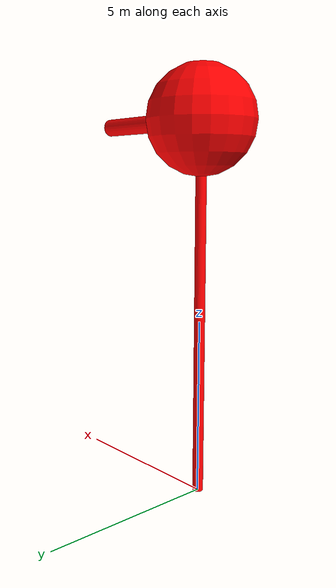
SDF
<?xml version='1.0'?>
<sdf version="1.7">
  <model name="gazebo_marker">
    <static>true</static>
    <shadow>false</shadow>
    <link name="cylinder_link">
      <pose>0 0 5.0 0 0 0</pose>

      <visual name="cylinder_visual">
        <geometry>
          <cylinder>
            <radius>0.15</radius>
            <length>10.0</length>
          </cylinder>
        </geometry>
        <material>
          <ambient>1.0 0.0 0.0 1.0</ambient>
          <diffuse>1.0 0.0 0.0 1.0</diffuse>
        </material>
        <cast_shadows>0</cast_shadows>
      </visual>
    </link>

    <link name="sphere_link">
      <pose>0 0 10.5 0 0 0</pose>

      <visual name="sphere_visual">
        <geometry>
          <sphere>
            <radius>1.5</radius>
          </sphere>
        </geometry>
        <material>
          <ambient>1.0 0.0 0.0 1.0</ambient> <!-- Red sphere -->
          <diffuse>1.0 0.0 0.0 1.0</diffuse>
        </material>
        <cast_shadows>0</cast_shadows>
      </visual>
    </link>

    <link name="cylinder_link_2">
      <pose>2.5 0 10.5 1.57 0 1.57</pose>

      <visual name="cylinder_visual_2">
        <geometry>
          <cylinder>
            <radius>0.25</radius>
            <length>3.0</length>
          </cylinder>
        </geometry>
        <material>
          <ambient>1.0 0.0 0.0 1.0</ambient>
          <diffuse>1.0 0.0 0.0 1.0</diffuse>
        </material>
        <cast_shadows>0</cast_shadows>
      </visual>
    </link>

  </model>
</sdf>
